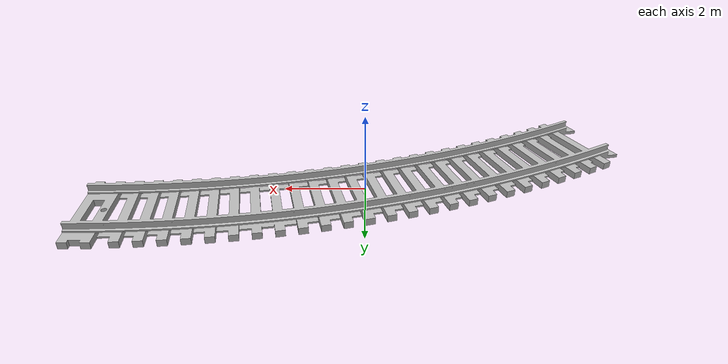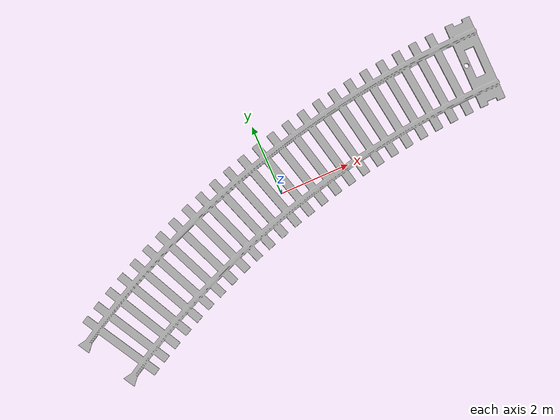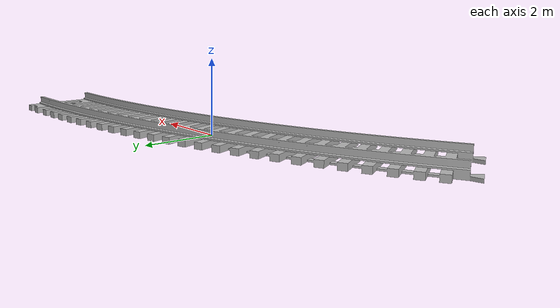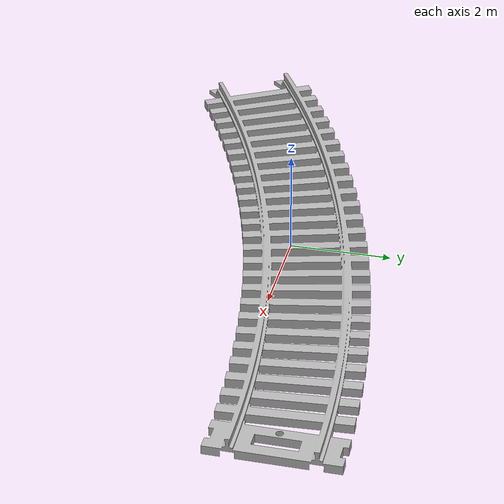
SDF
<?xml version="1.0" ?>
<sdf version="1.5">
  <model name="tracks_l">
        <static>true</static>
    <link name="link">
    <gravity>0</gravity>
      <collision name="collision">
        <geometry>
          <mesh>
            <scale>1 1 1</scale>
            <uri>model://tracks_30_l/meshes/track_l.dae</uri>
          </mesh>
        </geometry>
      </collision>
      <visual name="visual">
        <geometry>
          <mesh>
            <scale>1 1 1</scale>
            <uri>model://tracks_30_l/meshes/track_l.dae</uri>
          </mesh>
        </geometry>
      </visual>
    </link>
  </model>
</sdf>
